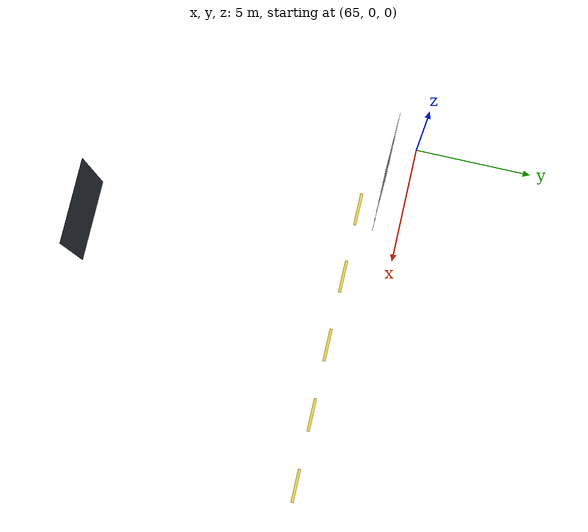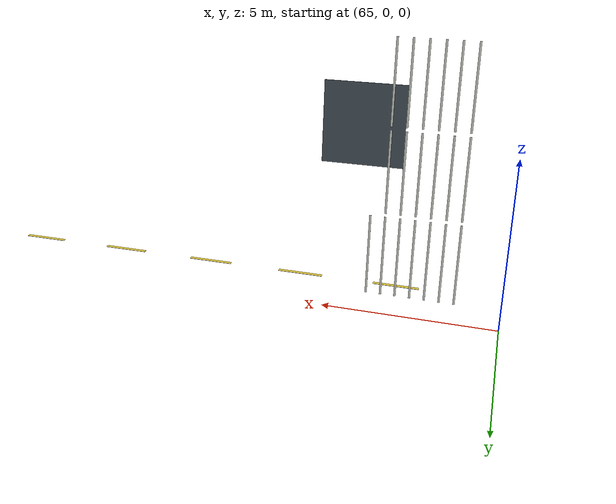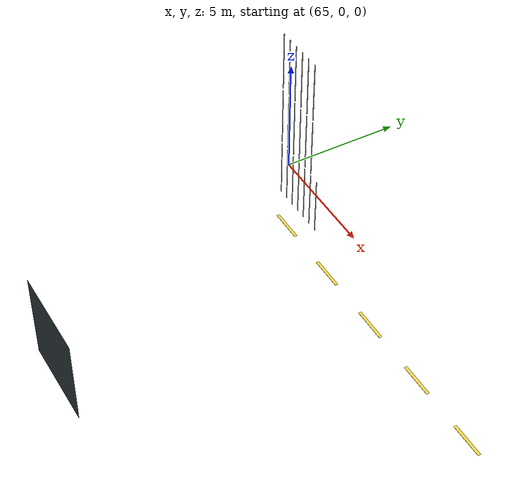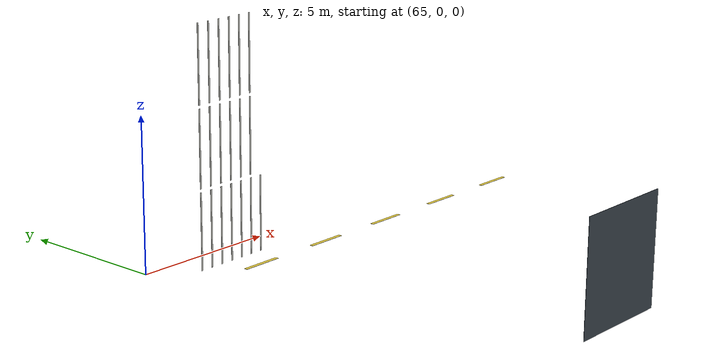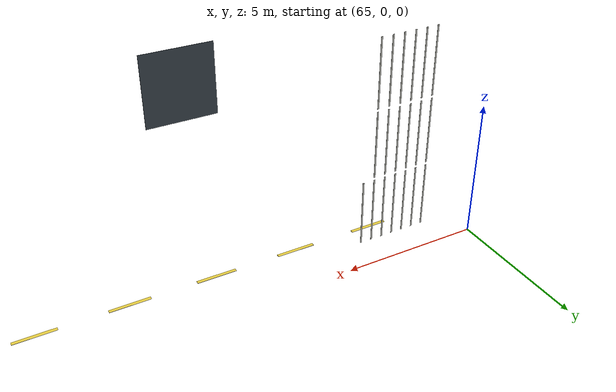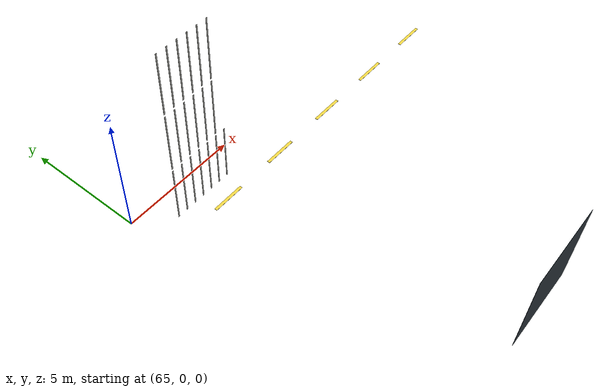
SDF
<sdf version="1.9">
 <world name="iris_mppi_yard_runup60">
  <model name="south_loading_door_26">
   <static>true</static>
   <pose>71.1 -12.895 1.8 0.0 0.0 0.0</pose>
   <link name="body">
    <visual name="visual">
     <geometry><box><size>3.5 0.01 3.6</size></box></geometry>
     <material><ambient>.25 .29 .32 1</ambient><diffuse>.25 .29 .32 1</diffuse></material>
    </visual>
   </link>
  </model>
  <model name="rib_1_0_7_-1">
   <static>true</static>
   <pose>66.31 -1.1179999999999999 1.3 0.0 0.0 0.0</pose>
   <link name="body">
    <visual name="visual">
     <geometry><box><size>0.06 0.008 2.5</size></box></geometry>
     <material><ambient>.75 .75 .72 1</ambient><diffuse>.75 .75 .72 1</diffuse></material>
    </visual>
   </link>
  </model>
  <model name="rib_1_0_8_-1">
   <static>true</static>
   <pose>66.74000000000001 -1.1179999999999999 1.3 0.0 0.0 0.0</pose>
   <link name="body">
    <visual name="visual">
     <geometry><box><size>0.06 0.008 2.5</size></box></geometry>
     <material><ambient>.75 .75 .72 1</ambient><diffuse>.75 .75 .72 1</diffuse></material>
    </visual>
   </link>
  </model>
  <model name="rib_1_0_9_-1">
   <static>true</static>
   <pose>67.17 -1.1179999999999999 1.3 0.0 0.0 0.0</pose>
   <link name="body">
    <visual name="visual">
     <geometry><box><size>0.06 0.008 2.5</size></box></geometry>
     <material><ambient>.75 .75 .72 1</ambient><diffuse>.75 .75 .72 1</diffuse></material>
    </visual>
   </link>
  </model>
  <model name="rib_1_0_10_-1">
   <static>true</static>
   <pose>67.6 -1.1179999999999999 1.3 0.0 0.0 0.0</pose>
   <link name="body">
    <visual name="visual">
     <geometry><box><size>0.06 0.008 2.5</size></box></geometry>
     <material><ambient>.75 .75 .72 1</ambient><diffuse>.75 .75 .72 1</diffuse></material>
    </visual>
   </link>
  </model>
  <model name="rib_1_0_11_-1">
   <static>true</static>
   <pose>68.03 -1.1179999999999999 1.3 0.0 0.0 0.0</pose>
   <link name="body">
    <visual name="visual">
     <geometry><box><size>0.06 0.008 2.5</size></box></geometry>
     <material><ambient>.75 .75 .72 1</ambient><diffuse>.75 .75 .72 1</diffuse></material>
    </visual>
   </link>
  </model>
  <model name="rib_1_0_12_-1">
   <static>true</static>
   <pose>68.46000000000001 -1.1179999999999999 1.3 0.0 0.0 0.0</pose>
   <link name="body">
    <visual name="visual">
     <geometry><box><size>0.06 0.008 2.5</size></box></geometry>
     <material><ambient>.75 .75 .72 1</ambient><diffuse>.75 .75 .72 1</diffuse></material>
    </visual>
   </link>
  </model>
  <model name="rib_1_0_13_-1">
   <static>true</static>
   <pose>68.89 -1.1179999999999999 1.3 0.0 0.0 0.0</pose>
   <link name="body">
    <visual name="visual">
     <geometry><box><size>0.06 0.008 2.5</size></box></geometry>
     <material><ambient>.75 .75 .72 1</ambient><diffuse>.75 .75 .72 1</diffuse></material>
    </visual>
   </link>
  </model>
  <model name="rib_1_1_7_-1">
   <static>true</static>
   <pose>66.31 -1.1179999999999999 3.9000000000000004 0.0 0.0 0.0</pose>
   <link name="body">
    <visual name="visual">
     <geometry><box><size>0.06 0.008 2.5</size></box></geometry>
     <material><ambient>.75 .75 .72 1</ambient><diffuse>.75 .75 .72 1</diffuse></material>
    </visual>
   </link>
  </model>
  <model name="rib_1_1_8_-1">
   <static>true</static>
   <pose>66.74000000000001 -1.1179999999999999 3.9000000000000004 0.0 0.0 0.0</pose>
   <link name="body">
    <visual name="visual">
     <geometry><box><size>0.06 0.008 2.5</size></box></geometry>
     <material><ambient>.75 .75 .72 1</ambient><diffuse>.75 .75 .72 1</diffuse></material>
    </visual>
   </link>
  </model>
  <model name="rib_1_1_9_-1">
   <static>true</static>
   <pose>67.17 -1.1179999999999999 3.9000000000000004 0.0 0.0 0.0</pose>
   <link name="body">
    <visual name="visual">
     <geometry><box><size>0.06 0.008 2.5</size></box></geometry>
     <material><ambient>.75 .75 .72 1</ambient><diffuse>.75 .75 .72 1</diffuse></material>
    </visual>
   </link>
  </model>
  <model name="rib_1_1_10_-1">
   <static>true</static>
   <pose>67.6 -1.1179999999999999 3.9000000000000004 0.0 0.0 0.0</pose>
   <link name="body">
    <visual name="visual">
     <geometry><box><size>0.06 0.008 2.5</size></box></geometry>
     <material><ambient>.75 .75 .72 1</ambient><diffuse>.75 .75 .72 1</diffuse></material>
    </visual>
   </link>
  </model>
  <model name="rib_1_1_11_-1">
   <static>true</static>
   <pose>68.03 -1.1179999999999999 3.9000000000000004 0.0 0.0 0.0</pose>
   <link name="body">
    <visual name="visual">
     <geometry><box><size>0.06 0.008 2.5</size></box></geometry>
     <material><ambient>.75 .75 .72 1</ambient><diffuse>.75 .75 .72 1</diffuse></material>
    </visual>
   </link>
  </model>
  <model name="rib_1_1_12_-1">
   <static>true</static>
   <pose>68.46000000000001 -1.1179999999999999 3.9000000000000004 0.0 0.0 0.0</pose>
   <link name="body">
    <visual name="visual">
     <geometry><box><size>0.06 0.008 2.5</size></box></geometry>
     <material><ambient>.75 .75 .72 1</ambient><diffuse>.75 .75 .72 1</diffuse></material>
    </visual>
   </link>
  </model>
  <model name="rib_1_2_7_-1">
   <static>true</static>
   <pose>66.31 -1.1179999999999999 6.5 0.0 0.0 0.0</pose>
   <link name="body">
    <visual name="visual">
     <geometry><box><size>0.06 0.008 2.5</size></box></geometry>
     <material><ambient>.75 .75 .72 1</ambient><diffuse>.75 .75 .72 1</diffuse></material>
    </visual>
   </link>
  </model>
  <model name="rib_1_2_8_-1">
   <static>true</static>
   <pose>66.74000000000001 -1.1179999999999999 6.5 0.0 0.0 0.0</pose>
   <link name="body">
    <visual name="visual">
     <geometry><box><size>0.06 0.008 2.5</size></box></geometry>
     <material><ambient>.75 .75 .72 1</ambient><diffuse>.75 .75 .72 1</diffuse></material>
    </visual>
   </link>
  </model>
  <model name="rib_1_2_9_-1">
   <static>true</static>
   <pose>67.17 -1.1179999999999999 6.5 0.0 0.0 0.0</pose>
   <link name="body">
    <visual name="visual">
     <geometry><box><size>0.06 0.008 2.5</size></box></geometry>
     <material><ambient>.75 .75 .72 1</ambient><diffuse>.75 .75 .72 1</diffuse></material>
    </visual>
   </link>
  </model>
  <model name="rib_1_2_10_-1">
   <static>true</static>
   <pose>67.6 -1.1179999999999999 6.5 0.0 0.0 0.0</pose>
   <link name="body">
    <visual name="visual">
     <geometry><box><size>0.06 0.008 2.5</size></box></geometry>
     <material><ambient>.75 .75 .72 1</ambient><diffuse>.75 .75 .72 1</diffuse></material>
    </visual>
   </link>
  </model>
  <model name="rib_1_2_11_-1">
   <static>true</static>
   <pose>68.03 -1.1179999999999999 6.5 0.0 0.0 0.0</pose>
   <link name="body">
    <visual name="visual">
     <geometry><box><size>0.06 0.008 2.5</size></box></geometry>
     <material><ambient>.75 .75 .72 1</ambient><diffuse>.75 .75 .72 1</diffuse></material>
    </visual>
   </link>
  </model>
  <model name="rib_1_2_12_-1">
   <static>true</static>
   <pose>68.46000000000001 -1.1179999999999999 6.5 0.0 0.0 0.0</pose>
   <link name="body">
    <visual name="visual">
     <geometry><box><size>0.06 0.008 2.5</size></box></geometry>
     <material><ambient>.75 .75 .72 1</ambient><diffuse>.75 .75 .72 1</diffuse></material>
    </visual>
   </link>
  </model>
  <model name="road_dash_23">
   <static>true</static>
   <pose>68.1 -1.9 0.006 0.0 0.0 0.0</pose>
   <link name="body">
    <visual name="visual">
     <geometry><box><size>1.4 0.12 0.01</size></box></geometry>
     <material><ambient>.9 .8 .25 1</ambient><diffuse>.9 .8 .25 1</diffuse></material>
    </visual>
   </link>
  </model>
  <model name="road_dash_26">
   <static>true</static>
   <pose>71.1 -1.9 0.006 0.0 0.0 0.0</pose>
   <link name="body">
    <visual name="visual">
     <geometry><box><size>1.4 0.12 0.01</size></box></geometry>
     <material><ambient>.9 .8 .25 1</ambient><diffuse>.9 .8 .25 1</diffuse></material>
    </visual>
   </link>
  </model>
  <model name="road_dash_29">
   <static>true</static>
   <pose>74.1 -1.9 0.006 0.0 0.0 0.0</pose>
   <link name="body">
    <visual name="visual">
     <geometry><box><size>1.4 0.12 0.01</size></box></geometry>
     <material><ambient>.9 .8 .25 1</ambient><diffuse>.9 .8 .25 1</diffuse></material>
    </visual>
   </link>
  </model>
  <model name="road_dash_32">
   <static>true</static>
   <pose>77.1 -1.9 0.006 0.0 0.0 0.0</pose>
   <link name="body">
    <visual name="visual">
     <geometry><box><size>1.4 0.12 0.01</size></box></geometry>
     <material><ambient>.9 .8 .25 1</ambient><diffuse>.9 .8 .25 1</diffuse></material>
    </visual>
   </link>
  </model>
  <model name="road_dash_35">
   <static>true</static>
   <pose>80.1 -1.9 0.006 0.0 0.0 0.0</pose>
   <link name="body">
    <visual name="visual">
     <geometry><box><size>1.4 0.12 0.01</size></box></geometry>
     <material><ambient>.9 .8 .25 1</ambient><diffuse>.9 .8 .25 1</diffuse></material>
    </visual>
   </link>
  </model>
 </world>
</sdf>
